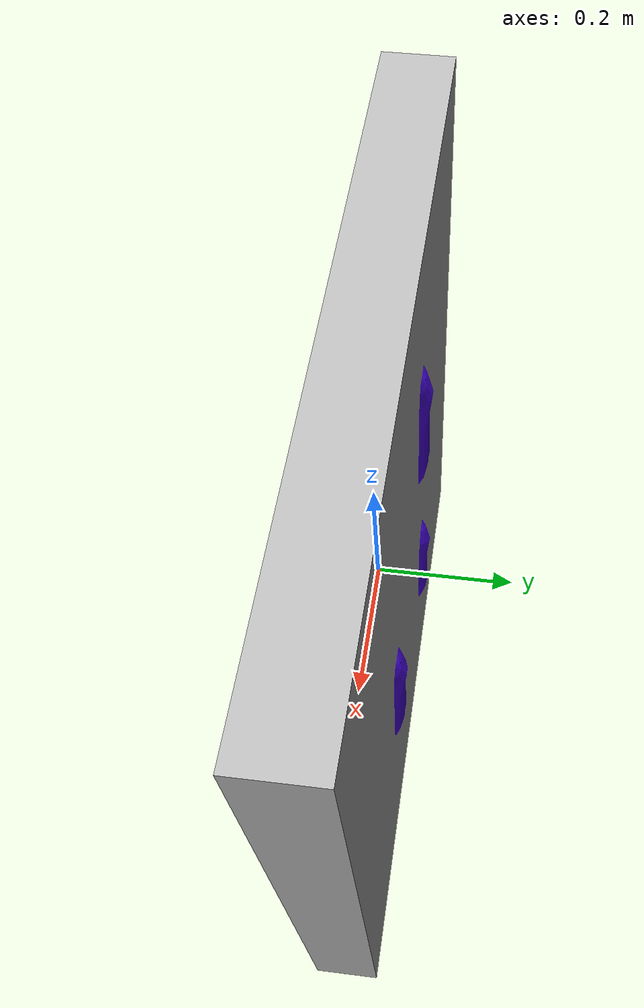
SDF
<?xml version='1.0'?>
<sdf version="1.6">
  <model name="eggplant_4">
    <static>true</static>
    <link name="eggplant_4">
      <collision name="collision">
        <geometry>
          <box>
            <size>1 1 1</size>
          </box>
        </geometry>
      </collision>
      <visual name="visual">
        <geometry>
          <mesh>
            <scale>1 1 1</scale>
            <uri>model://icuas24/eggplant_4.dae</uri>
          </mesh>
        </geometry>
      </visual>
    </link>
  </model>
</sdf>
